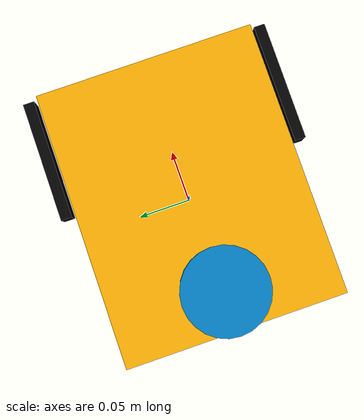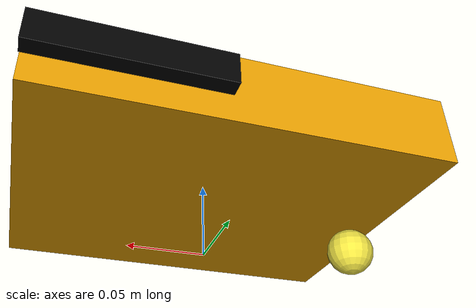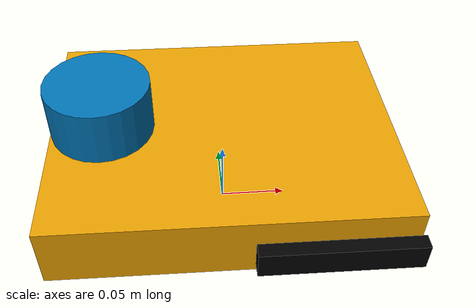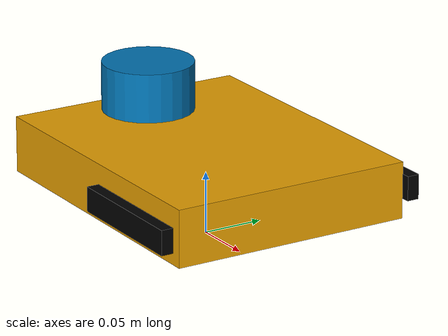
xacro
<?xml version="1.0"?>
<robot name="agv_v1" xmlns:xacro="http://www.ros.org/wiki/xacro">

<material name="Black">
   <color rgba="0.0 0.0 0.0 1.0"/>
</material>

<material name="White">
   <color rgba="1.0 1.0 1.0 1.0"/>
</material>

<xacro:property name="deg_to_rad" value="0.017453"/>
<xacro:property name="PI" value="3.14"/>

<!-- ************* Chassis ********************* -->

<xacro:property name="chassis_length" value="0.25"/>
<xacro:property name="chassis_width" value="0.20"/>
<xacro:property name="chassis_height" value="0.046"/>

<!-- **************** Wheel ******************* -->

<xacro:property name="wheel_radius" value="0.055"/>
<xacro:property name="wheel_width" value="0.020"/>
<xacro:property name="wheel_mass" value="0.2"/>

<!-- *************** Caster ******************** -->

<xacro:property name="caster_radius" value="${(wheel_radius-(chassis_height/2))/2}"/>
<xacro:property name="caster_mass" value="0.2"/>

<!-- *************** Laser ******************** -->

<xacro:property name="laser_radius" value="0.0375" />
<xacro:property name="laser_height" value="0.04" />
<xacro:property name="laser_mass" value="0.2" />

<!-- *************** Friction  ******************** -->

<xacro:property name="mu1" value="0" />
<xacro:property name="mu2" value="0" />

<!-- ************** Inertias ****************** -->

<xacro:macro name="wheel_inertia" params ="m r h">
  <inertial>
   <mass value="${m}"/>
   <inertia ixx="${m*(3*r*r+h*h)/12}"  ixy="0.0" ixz="0.0"
            iyy="${m*(3*r*r+h*h)/12}"  iyz= "0.0"
            izz="${m*r*r/2}"/>
   </inertial>
</xacro:macro>

<xacro:macro name= "chassis_inertia" params="mass">
  <inertial>
    <mass value="${mass}"/>
      <inertia ixx="0.1" ixy="0.0"
               iyy="0.1" iyz="0.0"
               izz="0.1" ixz="0.0"/>
   </inertial>
 </xacro:macro>

 <xacro:macro name= "caster_inertia" params="mass radius">
  <inertial>
    <mass value="${mass}"/>
      <inertia ixx="${2*mass*(radius*radius)/5}" ixy="0.0"
               iyy="${2*mass*(radius*radius)/5}" iyz="0.0"
               izz="${2*mass*(radius*radius)/5}" ixz="0.0"/>
   </inertial>
 </xacro:macro>

<!-- ******************* BASE LINK ********************* -->

 <link name="base_link">
    <visual>
      <origin rpy="0 0 0" xyz="0 0 ${wheel_radius}"/>
      <geometry>
        <box size="${chassis_length} ${chassis_width} ${chassis_height}"/>
        <!-- mesh filename="$(find agvsim)/meshes/Wheel.igs)"/ -->
      </geometry>
     </visual>

    <collision>
      <origin rpy="0 0 0" xyz="0 0 ${wheel_radius}"/>
      <geometry>
        <box size="${chassis_length} ${chassis_width} ${chassis_height}"/>
      </geometry>
    </collision>

    <xacro:chassis_inertia mass="2.0"/>
 </link>

<!-- ******************* WHEELS ********************* -->

<xacro:macro name="wheel" params= "prefix suffix X Y Z">
  <link name= "${prefix}_${suffix}_wheel">
    <visual>
     <origin rpy= "${PI/2} 0 0" xyz= "0 0 0"/>
     <geometry>
      <box size="${wheel_radius*2} ${wheel_width} 0.01" />
     </geometry>
     <material name= "Black"/>
    </visual>
    <collision>
     <origin rpy= "${PI/2} 0 0" xyz= "0 0 0"/>
     <geometry><cylinder length="${wheel_width}" radius= "${wheel_radius}"/></geometry>
    </collision>
  <xacro:wheel_inertia m="${wheel_mass}" r="${wheel_radius}" h="${wheel_width}"/>
  </link>

  <gazebo reference="{prefix}_${suffix}_wheel">
    <mu1 value="10000"/>
    <mu2 value="200000"/>
    <kp  value="10E2" />
    <kd  value="1" />
    <fdir1 value="1 0 0"/>
  </gazebo>

  <joint name="${prefix}_${suffix}_wheel_joint" type="continuous">
	  <parent link= "base_link"/>
	  <child link= "${prefix}_${suffix}_wheel"/>
	  <origin xyz= "${chassis_length/2 - wheel_radius} ${(chassis_width/2+wheel_width/2)*Z}  ${wheel_radius}" rpy="0 0 0"/>
	  <axis xyz="0 1 0"/>
  	  <dynamics damping="1.0" friction="1.0"/>
  </joint>

</xacro:macro>

<xacro:wheel prefix="right" suffix="back" X="0" Y="1" Z="-1"/>
<xacro:wheel prefix="left" suffix="back" X="0" Y="1" Z="1"/>

<!-- ******************* CASTER ********************* -->

<link name="casterwheel" >
        <visual>
          <geometry>
            <sphere radius="${caster_radius}" />
            <!-- mesh filename="$(find agvsim)/meshes/Caster_Wheel.igs)"/ -->
          </geometry>
        <origin xyz="0 0 0" />
        </visual>

        <collision>
            <geometry>
                <sphere radius="${caster_radius}" />
            </geometry>
            <origin xyz="0 0 0" />
            <surface>
              <friction>
                <ode>
                  <mu>100</mu>
                  <mu2>50</mu2>
                  <slip1>1.0</slip1>
                  <slip2>1.0</slip2>
                </ode>
              </friction>
            </surface>
        </collision>

       <xacro:caster_inertia mass="${caster_mass}" radius="${caster_radius}" />
</link>

<joint name="base_to_caster" type="fixed">
    <parent link="base_link" />
    <child link="casterwheel" />
    <origin xyz="${-chassis_length/2 + caster_radius} 0 ${caster_radius}" />
</joint>

<!-- ******************* LASER ********************* -->

<link name="laser">
          <visual>
              <geometry>
                  <cylinder length="${laser_height}" radius="${laser_radius}" />
              </geometry>
          </visual>

          <collision>
              <geometry>
                  <cylinder length="${laser_height}" radius="${laser_radius}" />
              </geometry>
          </collision>

          <xacro:wheel_inertia m="${laser_mass}" r="${laser_radius}" h="${laser_height}" />
</link>

<joint name="base_to_laser" type="fixed">
        <origin xyz="${-chassis_length/2 + laser_radius} 0 ${wheel_radius+chassis_height/2+laser_height/2}" rpy="0 0 0" />
        <parent link="base_link"/>
        <child link="laser"/>
</joint>

<gazebo reference="laser">
	    <sensor type="gpu_ray" name="head_hokuyo_sensor">
	      <pose>0 0 0 0 0 0</pose>
	      <visualize>false</visualize>
	      <update_rate>100</update_rate>
	      <ray>
	        <scan>
	          <horizontal>
	            <samples>720</samples>
	            <resolution>1</resolution>
	            <min_angle>-3.1416</min_angle>
	            <max_angle>3.1416</max_angle>
	          </horizontal>
	        </scan>
	        <range>
	          <min>0.50</min>
	          <max>5.0</max>
	          <resolution>0.1</resolution>
	        </range>
	        <noise>
	          <type>gaussian</type>
	          <mean>0.0</mean>
	          <stddev>0.01</stddev>
	        </noise>
	      </ray>
	      <plugin name="gazebo_ros_head_hokuyo_controller" filename="libgazebo_ros_gpu_laser.so">
	        <topicName>scan</topicName>
	        <frameName>laser</frameName>
	      </plugin>
	    </sensor>
</gazebo>

<gazebo>
  	<plugin name="differential_drive_controller" filename="libgazebo_ros_diff_drive.so">
		    <alwaysOn>true</alwaysOn>
		    <legacyMode>false</legacyMode>
		    <updateRate>100</updateRate>
		    <leftJoint>left_back_wheel_joint</leftJoint>
		    <rightJoint>right_back_wheel_joint</rightJoint>
		    <wheelSeparation>${chassis_width}</wheelSeparation>
		    <wheelDiameter>${2 * wheel_radius}</wheelDiameter>
		    <wheelTorque>10</wheelTorque>
		    <commandTopic>cmd_vel</commandTopic>
		    <odometryTopic>odom</odometryTopic>
		    <odometryFrame>odom</odometryFrame>
		    <robotBaseFrame>base_link</robotBaseFrame>
        <publishOdomTF>true</publishOdomTF>
  	</plugin>
</gazebo>

</robot>
